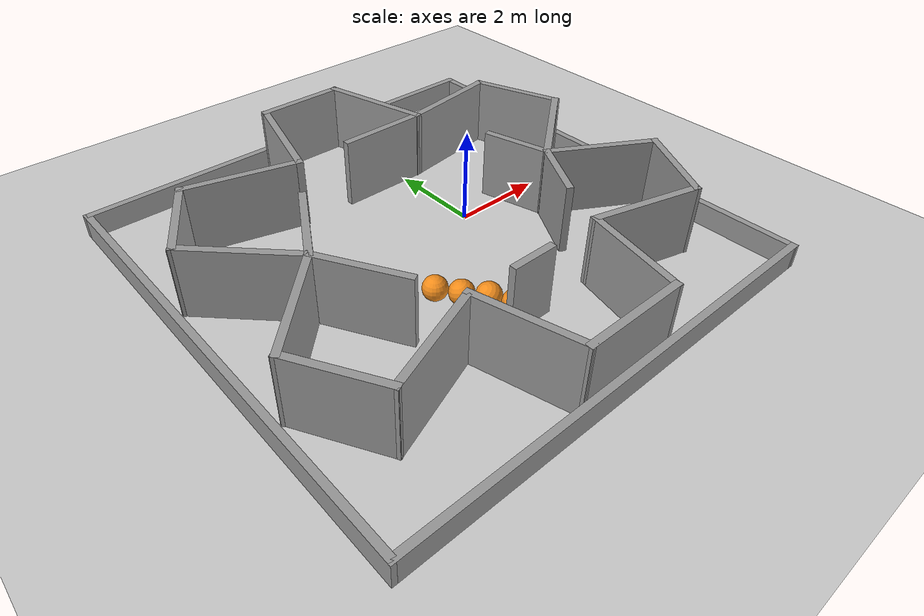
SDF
<sdf version="1.7">
 <world name="default">
  <light name="sun" type="directional">
   <pose>0 0 10 0 -0 0</pose>
   <diffuse>0.8 0.8 0.8 1</diffuse>
   <specular>0.2 0.2 0.2 1</specular>
   <attenuation>
    <range>1000</range>
    <constant>0.9</constant>
    <linear>0.01</linear>
    <quadratic>0.001</quadratic>
   </attenuation>
   <direction>-0.5 0.1 -0.9</direction>
   <spot><inner_angle>0</inner_angle><outer_angle>0</outer_angle><falloff>0</falloff></spot>
  </light>
  <model name="ground_plane">
   <static>1</static>
   <link name="link">
    <collision name="collision">
     <geometry><plane><normal>0 0 1</normal><size>100 100</size></plane></geometry>
     <surface><friction><ode><mu>100</mu><mu2>50</mu2></ode></friction></surface>
    </collision>
    <visual name="visual">
     <cast_shadows>0</cast_shadows>
     <geometry><plane><normal>0 0 1</normal><size>100 100</size></plane></geometry>
     <material>
      <script><uri>file://media/materials/scripts/gazebo.material</uri><name>Gazebo/Grey</name></script>
     </material>
    </visual>
   </link>
  </model>
  <gravity>0 0 -9.8</gravity>
  <magnetic_field>6e-06 2.3e-05 -4.2e-05</magnetic_field>
  <atmosphere type="adiabatic"/>
  <physics type="ode">
   <max_step_size>0.001</max_step_size>
   <real_time_factor>1</real_time_factor>
   <real_time_update_rate>1000</real_time_update_rate>
  </physics>
  <scene><ambient>0.4 0.4 0.4 1</ambient><background>0.7 0.7 0.7 1</background><shadows>1</shadows></scene>
  <audio><device>default</device></audio>
  <spherical_coordinates>
   <surface_model>EARTH_WGS84</surface_model>
   <latitude_deg>0</latitude_deg>
   <longitude_deg>0</longitude_deg>
   <elevation>0</elevation>
   <heading_deg>0</heading_deg>
  </spherical_coordinates>
  <model name="room2">
   <pose>-1.30767 -0.42033 0 0 -0 0</pose>
   <link name="Wall_12">
    <collision name="Wall_12_Collision">
     <geometry><box><size>2.45261 0.15 1.5</size></box></geometry>
     <pose>0 0 0.75 0 -0 0</pose>
    </collision>
    <visual name="Wall_12_Visual">
     <pose>0 0 0.75 0 -0 0</pose>
     <geometry><box><size>2.45261 0.15 1.5</size></box></geometry>
     <material>
      <script><uri>file://media/materials/scripts/gazebo.material</uri><name>Gazebo/Grey</name></script>
      <ambient>1 1 1 1</ambient>
     </material>
     <meta><layer>0</layer></meta>
    </visual>
    <pose>2.681 -2.989 0 0 -0 -0.262253</pose>
   </link>
   <link name="Wall_32">
    <collision name="Wall_32_Collision">
     <geometry><box><size>2.5 0.15 1.5</size></box></geometry>
     <pose>0 0 0.75 0 -0 0</pose>
    </collision>
    <visual name="Wall_32_Visual">
     <pose>0 0 0.75 0 -0 0</pose>
     <geometry><box><size>2.5 0.15 1.5</size></box></geometry>
     <material>
      <script><uri>file://media/materials/scripts/gazebo.material</uri><name>Gazebo/Grey</name></script>
      <ambient>1 1 1 1</ambient>
     </material>
     <meta><layer>0</layer></meta>
    </visual>
    <pose>1.3955 3.59 0 0 -0 1.83302</pose>
   </link>
   <link name="Wall_33">
    <collision name="Wall_33_Collision">
     <geometry><box><size>2 0.15 1.5</size></box></geometry>
     <pose>0 0 0.75 0 -0 0</pose>
    </collision>
    <visual name="Wall_33_Visual">
     <pose>0 0 0.75 0 -0 0</pose>
     <geometry><box><size>2 0.15 1.5</size></box></geometry>
     <material>
      <script><uri>file://media/materials/scripts/gazebo.material</uri><name>Gazebo/Grey</name></script>
      <ambient>1 1 1 1</ambient>
     </material>
     <meta><layer>0</layer></meta>
    </visual>
    <pose>0.166 4.7245 0 0 -0 3.14159</pose>
   </link>
   <link name="Wall_34">
    <collision name="Wall_34_Collision">
     <geometry><box><size>2.5 0.15 1.5</size></box></geometry>
     <pose>0 0 0.75 0 -0 0</pose>
    </collision>
    <visual name="Wall_34_Visual">
     <pose>0 0 0.75 0 -0 0</pose>
     <geometry><box><size>2.5 0.15 1.5</size></box></geometry>
     <material>
      <script><uri>file://media/materials/scripts/gazebo.material</uri><name>Gazebo/Grey</name></script>
      <ambient>1 1 1 1</ambient>
     </material>
     <meta><layer>0</layer></meta>
    </visual>
    <pose>-1.063 3.59 0 0 -0 -1.83261</pose>
   </link>
   <link name="Wall_35">
    <collision name="Wall_35_Collision">
     <geometry><box><size>2.5 0.15 1.5</size></box></geometry>
     <pose>0 0 0.75 0 -0 0</pose>
    </collision>
    <visual name="Wall_35_Visual">
     <pose>0 0 0.75 0 -0 0</pose>
     <geometry><box><size>2.5 0.15 1.5</size></box></geometry>
     <material>
      <script><uri>file://media/materials/scripts/gazebo.material</uri><name>Gazebo/Grey</name></script>
      <ambient>1 1 1 1</ambient>
     </material>
     <meta><layer>0</layer></meta>
    </visual>
    <pose>-2.502 2.7595 0 0 -0 2.87989</pose>
   </link>
   <link name="Wall_36">
    <collision name="Wall_36_Collision">
     <geometry><box><size>2 0.15 1.5</size></box></geometry>
     <pose>0 0 0.75 0 -0 0</pose>
    </collision>
    <visual name="Wall_36_Visual">
     <pose>0 0 0.75 0 -0 0</pose>
     <geometry><box><size>2 0.15 1.5</size></box></geometry>
     <material>
      <script><uri>file://media/materials/scripts/gazebo.material</uri><name>Gazebo/Grey</name></script>
      <ambient>1 1 1 1</ambient>
     </material>
     <meta><layer>0</layer></meta>
    </visual>
    <pose>-4.0995 2.2625 0 0 -0 -2.09443</pose>
   </link>
   <link name="Wall_37">
    <collision name="Wall_37_Collision">
     <geometry><box><size>2.50042 0.15 1.5</size></box></geometry>
     <pose>0 0 0.75 0 -0 0</pose>
    </collision>
    <visual name="Wall_37_Visual">
     <pose>0 0 0.75 0 -0 0</pose>
     <geometry><box><size>2.50042 0.15 1.5</size></box></geometry>
     <material>
      <script><uri>file://media/materials/scripts/gazebo.material</uri><name>Gazebo/Grey</name></script>
      <ambient>1 1 1 1</ambient>
     </material>
     <meta><layer>0</layer></meta>
    </visual>
    <pose>-3.731 0.6305 0 0 -0 -0.785398</pose>
   </link>
   <link name="Wall_38">
    <collision name="Wall_38_Collision">
     <geometry><box><size>2.50042 0.15 1.5</size></box></geometry>
     <pose>0 0 0.75 0 -0 0</pose>
    </collision>
    <visual name="Wall_38_Visual">
     <pose>0 0 0.75 0 -0 0</pose>
     <geometry><box><size>2.50042 0.15 1.5</size></box></geometry>
     <material>
      <script><uri>file://media/materials/scripts/gazebo.material</uri><name>Gazebo/Grey</name></script>
      <ambient>1 1 1 1</ambient>
     </material>
     <meta><layer>0</layer></meta>
    </visual>
    <pose>-3.731 -1.0315 0 0 -0 -2.35619</pose>
   </link>
   <link name="Wall_39">
    <collision name="Wall_39_Collision">
     <geometry><box><size>2.00001 0.15 1.5</size></box></geometry>
     <pose>0 0 0.75 0 -0 0</pose>
    </collision>
    <visual name="Wall_39_Visual">
     <pose>0 0 0.75 0 -0 0</pose>
     <geometry><box><size>2.00001 0.15 1.5</size></box></geometry>
     <material>
      <script><uri>file://media/materials/scripts/gazebo.material</uri><name>Gazebo/Grey</name></script>
      <ambient>1 1 1 1</ambient>
     </material>
     <meta><layer>0</layer></meta>
    </visual>
    <pose>-4.0995 -2.6635 0 0 -0 -1.04716</pose>
   </link>
   <link name="Wall_40">
    <collision name="Wall_40_Collision">
     <geometry><box><size>2.38551 0.15 1.5</size></box></geometry>
     <pose>0 0 0.75 0 -0 0</pose>
    </collision>
    <visual name="Wall_40_Visual">
     <pose>0 0 0.75 0 -0 0</pose>
     <geometry><box><size>2.38551 0.15 1.5</size></box></geometry>
     <material>
      <script><uri>file://media/materials/scripts/gazebo.material</uri><name>Gazebo/Grey</name></script>
      <ambient>1 1 1 1</ambient>
     </material>
     <meta><layer>0</layer></meta>
    </visual>
    <pose>-2.5905 -3.072 0 0 -0 0.358823</pose>
   </link>
   <link name="Wall_42">
    <collision name="Wall_42_Collision">
     <geometry><box><size>2 0.15 1.5</size></box></geometry>
     <pose>0 0 0.75 0 -0 0</pose>
    </collision>
    <visual name="Wall_42_Visual">
     <pose>0 0 0.75 0 -0 0</pose>
     <geometry><box><size>2 0.15 1.5</size></box></geometry>
     <material>
      <script><uri>file://media/materials/scripts/gazebo.material</uri><name>Gazebo/Grey</name></script>
      <ambient>1 1 1 1</ambient>
     </material>
     <meta><layer>0</layer></meta>
    </visual>
    <pose>4.2555 -2.4865 0 0 -0 1.04716</pose>
   </link>
   <link name="Wall_43">
    <collision name="Wall_43_Collision">
     <geometry><box><size>2.5 0.15 1.5</size></box></geometry>
     <pose>0 0 0.75 0 -0 0</pose>
    </collision>
    <visual name="Wall_43_Visual">
     <pose>0 0 0.75 0 -0 0</pose>
     <geometry><box><size>2.5 0.15 1.5</size></box></geometry>
     <material>
      <script><uri>file://media/materials/scripts/gazebo.material</uri><name>Gazebo/Grey</name></script>
      <ambient>1 1 1 1</ambient>
     </material>
     <meta><layer>0</layer></meta>
    </visual>
    <pose>3.7005 -1.098 0 0 -0 2.61796</pose>
   </link>
   <link name="Wall_44">
    <collision name="Wall_44_Collision">
     <geometry><box><size>2.55641 0.15 1.5</size></box></geometry>
     <pose>0 0 0.75 0 -0 0</pose>
    </collision>
    <visual name="Wall_44_Visual">
     <pose>0 0 0.75 0 -0 0</pose>
     <geometry><box><size>2.55641 0.15 1.5</size></box></geometry>
     <material>
      <script><uri>file://media/materials/scripts/gazebo.material</uri><name>Gazebo/Grey</name></script>
      <ambient>1 1 1 1</ambient>
     </material>
     <meta><layer>0</layer></meta>
    </visual>
    <pose>3.63206 0.229088 0 0 -0 0.661981</pose>
   </link>
   <link name="Wall_47">
    <collision name="Wall_47_Collision">
     <geometry><box><size>2.38393 0.15 1.5</size></box></geometry>
     <pose>0 0 0.75 0 -0 0</pose>
    </collision>
    <visual name="Wall_47_Visual">
     <pose>0 0 0.75 0 -0 0</pose>
     <geometry><box><size>2.38393 0.15 1.5</size></box></geometry>
     <material>
      <script><uri>file://media/materials/scripts/gazebo.material</uri><name>Gazebo/Grey</name></script>
      <ambient>1 1 1 1</ambient>
     </material>
     <meta><layer>0</layer></meta>
    </visual>
    <pose>2.80656 2.60759 0 0 -0 0.136586</pose>
   </link>
   <link name="Wall_49">
    <collision name="Wall_49_Collision">
     <geometry><box><size>2.06152 0.15 1.5</size></box></geometry>
     <pose>0 0 0.75 0 -0 0</pose>
    </collision>
    <visual name="Wall_49_Visual">
     <pose>0 0 0.75 0 -0 0</pose>
     <geometry><box><size>2.06152 0.15 1.5</size></box></geometry>
     <material>
      <script><uri>file://media/materials/scripts/gazebo.material</uri><name>Gazebo/Grey</name></script>
      <ambient>1 1 1 1</ambient>
     </material>
     <meta><layer>0</layer></meta>
    </visual>
    <pose>4.24712 1.84897 0 0 -0 -1.2138</pose>
   </link>
   <link name="Wall_51">
    <collision name="Wall_51_Collision">
     <geometry><box><size>2 0.15 1.5</size></box></geometry>
     <pose>0 0 0.75 0 -0 0</pose>
    </collision>
    <visual name="Wall_51_Visual">
     <pose>0 0 0.75 0 -0 0</pose>
     <geometry><box><size>2 0.15 1.5</size></box></geometry>
     <material>
      <script><uri>file://media/materials/scripts/gazebo.material</uri><name>Gazebo/Grey</name></script>
      <ambient>1 1 1 1</ambient>
     </material>
     <meta><layer>0</layer></meta>
    </visual>
    <pose>-2.4375 0.6005 0 0 -0 1.04716</pose>
   </link>
   <link name="Wall_54">
    <collision name="Wall_54_Collision">
     <geometry><box><size>2 0.15 1.5</size></box></geometry>
     <pose>0 0 0.75 0 -0 0</pose>
    </collision>
    <visual name="Wall_54_Visual">
     <pose>0 0 0.75 0 -0 0</pose>
     <geometry><box><size>2 0.15 1.5</size></box></geometry>
     <material>
      <script><uri>file://media/materials/scripts/gazebo.material</uri><name>Gazebo/Grey</name></script>
      <ambient>1 1 1 1</ambient>
     </material>
     <meta><layer>0</layer></meta>
    </visual>
    <pose>0.775 2.4555 0 0 -0 3.14159</pose>
   </link>
   <link name="Wall_56">
    <collision name="Wall_56_Collision">
     <geometry><box><size>2 0.15 1.5</size></box></geometry>
     <pose>0 0 0.75 0 -0 0</pose>
    </collision>
    <visual name="Wall_56_Visual">
     <pose>0 0 0.75 0 -0 0</pose>
     <geometry><box><size>2 0.15 1.5</size></box></geometry>
     <material>
      <script><uri>file://media/materials/scripts/gazebo.material</uri><name>Gazebo/Grey</name></script>
      <ambient>1 1 1 1</ambient>
     </material>
     <meta><layer>0</layer></meta>
    </visual>
    <pose>-2.4375 -1.0015 0 0 -0 -1.04716</pose>
   </link>
   <link name="Wall_58">
    <collision name="Wall_58_Collision">
     <geometry><box><size>1.5 0.15 1.5</size></box></geometry>
     <pose>0 0 0.75 0 -0 0</pose>
    </collision>
    <visual name="Wall_58_Visual">
     <pose>0 0 0.75 0 -0 0</pose>
     <geometry><box><size>1.5 0.15 1.5</size></box></geometry>
     <material>
      <script><uri>file://media/materials/scripts/gazebo.material</uri><name>Gazebo/Grey</name></script>
      <ambient>1 1 1 1</ambient>
     </material>
     <meta><layer>0</layer></meta>
    </visual>
    <pose>2.5085 0.1415 0 0 -0 1.83231</pose>
   </link>
   <link name="Wall_60">
    <collision name="Wall_60_Collision">
     <geometry><box><size>1 0.15 1.5</size></box></geometry>
     <pose>0 0 0.75 0 -0 0</pose>
    </collision>
    <visual name="Wall_60_Visual">
     <pose>0 0 0.75 0 -0 0</pose>
     <geometry><box><size>1 0.15 1.5</size></box></geometry>
     <material>
      <script><uri>file://media/materials/scripts/gazebo.material</uri><name>Gazebo/Grey</name></script>
      <ambient>1 1 1 1</ambient>
     </material>
     <meta><layer>0</layer></meta>
    </visual>
    <pose>-0.084 -2.7105 0 0 -0 0</pose>
   </link>
   <link name="Wall_62">
    <collision name="Wall_62_Collision">
     <geometry><box><size>1.5 0.15 1.5</size></box></geometry>
     <pose>0 0 0.75 0 -0 0</pose>
    </collision>
    <visual name="Wall_62_Visual">
     <pose>0 0 0.75 0 -0 0</pose>
     <geometry><box><size>1.5 0.15 1.5</size></box></geometry>
     <material>
      <script><uri>file://media/materials/scripts/gazebo.material</uri><name>Gazebo/Grey</name></script>
      <ambient>1 1 1 1</ambient>
     </material>
     <meta><layer>0</layer></meta>
    </visual>
    <pose>2.3455 -1.095 0 0 -0 -2.09444</pose>
   </link>
   <link name="Wall_67">
    <collision name="Wall_67_Collision">
     <geometry><box><size>10 0.15 0.5</size></box></geometry>
     <pose>0 0 0.25 0 -0 0</pose>
    </collision>
    <visual name="Wall_67_Visual">
     <pose>0 0 0.25 0 -0 0</pose>
     <geometry><box><size>10 0.15 0.5</size></box></geometry>
     <material>
      <script><uri>file://media/materials/scripts/gazebo.material</uri><name>Gazebo/Grey</name></script>
      <ambient>1 1 1 1</ambient>
     </material>
     <meta><layer>0</layer></meta>
    </visual>
    <pose>0 4.925 0 0 -0 -0.000102</pose>
   </link>
   <link name="Wall_83">
    <collision name="Wall_83_Collision">
     <geometry><box><size>2.25 0.15 1.5</size></box></geometry>
     <pose>0 0 0.75 0 -0 0</pose>
    </collision>
    <visual name="Wall_83_Visual">
     <pose>0 0 0.75 0 -0 0</pose>
     <geometry><box><size>2.25 0.15 1.5</size></box></geometry>
     <material>
      <script><uri>file://media/materials/scripts/gazebo.material</uri><name>Gazebo/Grey</name></script>
      <ambient>1 1 1 1</ambient>
     </material>
     <meta><layer>0</layer></meta>
    </visual>
    <pose>-1.272 -3.6935 0 0 -0 -1.30872</pose>
   </link>
   <link name="Wall_85">
    <collision name="Wall_85_Collision">
     <geometry><box><size>2.25 0.15 1.5</size></box></geometry>
     <pose>0 0 0.75 0 -0 0</pose>
    </collision>
    <visual name="Wall_85_Visual">
     <pose>0 0 0.75 0 -0 0</pose>
     <geometry><box><size>2.25 0.15 1.5</size></box></geometry>
     <material>
      <script><uri>file://media/materials/scripts/gazebo.material</uri><name>Gazebo/Grey</name></script>
      <ambient>1 1 1 1</ambient>
     </material>
     <meta><layer>0</layer></meta>
    </visual>
    <pose>0.05 -4.7075 0 0 -0 0</pose>
   </link>
   <link name="Wall_87">
    <collision name="Wall_87_Collision">
     <geometry><box><size>2.22086 0.15 1.5</size></box></geometry>
     <pose>0 0 0.75 0 -0 0</pose>
    </collision>
    <visual name="Wall_87_Visual">
     <pose>0 0 0.75 0 -0 0</pose>
     <geometry><box><size>2.22086 0.15 1.5</size></box></geometry>
     <material>
      <script><uri>file://media/materials/scripts/gazebo.material</uri><name>Gazebo/Grey</name></script>
      <ambient>1 1 1 1</ambient>
     </material>
     <meta><layer>0</layer></meta>
    </visual>
    <pose>1.3345 -3.699 0 0 -0 -1.79926</pose>
   </link>
   <link name="Wall_92">
    <collision name="Wall_92_Collision">
     <geometry><box><size>10 0.15 0.5</size></box></geometry>
     <pose>0 0 0.25 0 -0 0</pose>
    </collision>
    <visual name="Wall_92_Visual">
     <pose>0 0 0.25 0 -0 0</pose>
     <geometry><box><size>10 0.15 0.5</size></box></geometry>
     <material>
      <script><uri>file://media/materials/scripts/gazebo.material</uri><name>Gazebo/Grey</name></script>
      <ambient>1 1 1 1</ambient>
     </material>
     <meta><layer>0</layer></meta>
    </visual>
    <pose>-4.925 0.0005 0 0 -0 -1.5708</pose>
   </link>
   <link name="Wall_94">
    <collision name="Wall_94_Collision">
     <geometry><box><size>10 0.15 0.5</size></box></geometry>
     <pose>0 0 0.25 0 -0 0</pose>
    </collision>
    <visual name="Wall_94_Visual">
     <pose>0 0 0.25 0 -0 0</pose>
     <geometry><box><size>10 0.15 0.5</size></box></geometry>
     <material>
      <script><uri>file://media/materials/scripts/gazebo.material</uri><name>Gazebo/Grey</name></script>
      <ambient>1 1 1 1</ambient>
     </material>
     <meta><layer>0</layer></meta>
    </visual>
    <pose>0 -4.925 0 0 -0 -0.000102</pose>
   </link>
   <link name="Wall_95">
    <collision name="Wall_95_Collision">
     <geometry><box><size>10 0.15 0.5</size></box></geometry>
     <pose>0 0 0.25 0 -0 0</pose>
    </collision>
    <visual name="Wall_95_Visual">
     <pose>0 0 0.25 0 -0 0</pose>
     <geometry><box><size>10 0.15 0.5</size></box></geometry>
     <material>
      <script><uri>file://media/materials/scripts/gazebo.material</uri><name>Gazebo/Grey</name></script>
      <ambient>1 1 1 1</ambient>
     </material>
     <meta><layer>0</layer></meta>
    </visual>
    <pose>4.925 -0.0005 0 0 -0 1.5708</pose>
   </link>
   <static>1</static>
  </model>
  <model name="cricket_ball">
   <link name="link">
    <pose>0 0 0.0375 0 -0 0</pose>
    <inertial>
     <mass>0.1467</mass>
     <inertia>
      <ixx>8.25187e-05</ixx>
      <ixy>0</ixy>
      <ixz>0</ixz>
      <iyy>8.25187e-05</iyy>
      <iyz>0</iyz>
      <izz>8.25187e-05</izz>
     </inertia>
    </inertial>
    <collision name="collision">
     <geometry><sphere><radius>0.25</radius></sphere></geometry>
     <surface>
      <contact>
       <poissons_ratio>0.347</poissons_ratio>
       <elastic_modulus>8.8e+09</elastic_modulus>
       <ode><kp>100000</kp><kd>100</kd><max_vel>100</max_vel><min_depth>0.001</min_depth></ode>
      </contact>
      <friction>
       <torsional>
        <coefficient>1</coefficient>
        <use_patch_radius>0</use_patch_radius>
        <surface_radius>0.01</surface_radius>
       </torsional>
      </friction>
     </surface>
    </collision>
    <visual name="visual">
     <geometry><sphere><radius>0.25</radius></sphere></geometry>
     <material>
      <script><uri>file://media/materials/scripts/gazebo.material</uri><name>Gazebo/Orange</name></script>
     </material>
    </visual>
    <velocity_decay><linear>0.9</linear><angular>0.005</angular></velocity_decay>
   </link>
   <pose>-1.40311 -2.78197 0.245981 0.064408 1.49041 -0.66187</pose>
  </model>
  <model name="cricket_ball_0">
   <link name="link">
    <pose>0 0 0.0375 0 -0 0</pose>
    <inertial>
     <mass>0.1467</mass>
     <inertia>
      <ixx>8.25187e-05</ixx>
      <ixy>0</ixy>
      <ixz>0</ixz>
      <iyy>8.25187e-05</iyy>
      <iyz>0</iyz>
      <izz>8.25187e-05</izz>
     </inertia>
    </inertial>
    <collision name="collision">
     <geometry><sphere><radius>0.25</radius></sphere></geometry>
     <surface>
      <contact>
       <poissons_ratio>0.347</poissons_ratio>
       <elastic_modulus>8.8e+09</elastic_modulus>
       <ode><kp>100000</kp><kd>100</kd><max_vel>100</max_vel><min_depth>0.001</min_depth></ode>
      </contact>
      <friction>
       <torsional>
        <coefficient>1</coefficient>
        <use_patch_radius>0</use_patch_radius>
        <surface_radius>0.01</surface_radius>
       </torsional>
      </friction>
     </surface>
    </collision>
    <visual name="visual">
     <geometry><sphere><radius>0.25</radius></sphere></geometry>
     <material>
      <script><uri>file://media/materials/scripts/gazebo.material</uri><name>Gazebo/Orange</name></script>
     </material>
    </visual>
    <velocity_decay><linear>0.9</linear><angular>0.005</angular></velocity_decay>
   </link>
   <pose>-1.61381 -2.35286 0.279757 -2.56686 0.211828 -1.98571</pose>
  </model>
  <model name="cricket_ball_1">
   <link name="link">
    <pose>0 0 0.0375 0 -0 0</pose>
    <inertial>
     <mass>0.1467</mass>
     <inertia>
      <ixx>8.25187e-05</ixx>
      <ixy>0</ixy>
      <ixz>0</ixz>
      <iyy>8.25187e-05</iyy>
      <iyz>0</iyz>
      <izz>8.25187e-05</izz>
     </inertia>
    </inertial>
    <collision name="collision">
     <geometry><sphere><radius>0.25</radius></sphere></geometry>
     <surface>
      <contact>
       <poissons_ratio>0.347</poissons_ratio>
       <elastic_modulus>8.8e+09</elastic_modulus>
       <ode><kp>100000</kp><kd>100</kd><max_vel>100</max_vel><min_depth>0.001</min_depth></ode>
      </contact>
      <friction>
       <torsional>
        <coefficient>1</coefficient>
        <use_patch_radius>0</use_patch_radius>
        <surface_radius>0.01</surface_radius>
       </torsional>
      </friction>
     </surface>
    </collision>
    <visual name="visual">
     <geometry><sphere><radius>0.25</radius></sphere></geometry>
     <material>
      <script><uri>file://media/materials/scripts/gazebo.material</uri><name>Gazebo/Orange</name></script>
     </material>
    </visual>
    <velocity_decay><linear>0.9</linear><angular>0.005</angular></velocity_decay>
   </link>
   <pose>-1.93599 -1.97506 0.284533 -2.95432 -0.266163 -1.28347</pose>
  </model>
  <model name="cricket_ball_2">
   <link name="link">
    <pose>0 0 0.0375 0 -0 0</pose>
    <inertial>
     <mass>0.1467</mass>
     <inertia>
      <ixx>8.25187e-05</ixx>
      <ixy>0</ixy>
      <ixz>0</ixz>
      <iyy>8.25187e-05</iyy>
      <iyz>0</iyz>
      <izz>8.25187e-05</izz>
     </inertia>
    </inertial>
    <collision name="collision">
     <geometry><sphere><radius>0.25</radius></sphere></geometry>
     <surface>
      <contact>
       <poissons_ratio>0.347</poissons_ratio>
       <elastic_modulus>8.8e+09</elastic_modulus>
       <ode><kp>100000</kp><kd>100</kd><max_vel>100</max_vel><min_depth>0.001</min_depth></ode>
      </contact>
      <friction>
       <torsional>
        <coefficient>1</coefficient>
        <use_patch_radius>0</use_patch_radius>
        <surface_radius>0.01</surface_radius>
       </torsional>
      </friction>
     </surface>
    </collision>
    <visual name="visual">
     <geometry><sphere><radius>0.25</radius></sphere></geometry>
     <material>
      <script><uri>file://media/materials/scripts/gazebo.material</uri><name>Gazebo/Orange</name></script>
     </material>
    </visual>
    <velocity_decay><linear>0.9</linear><angular>0.005</angular></velocity_decay>
   </link>
   <pose>-2.2137 -1.57493 0.211502 -0.023607 -0.017499 0.000108</pose>
  </model>
  <model name="cricket_ball_3">
   <link name="link">
    <pose>0 0 0.0375 0 -0 0</pose>
    <inertial>
     <mass>0.1467</mass>
     <inertia>
      <ixx>8.25187e-05</ixx>
      <ixy>0</ixy>
      <ixz>0</ixz>
      <iyy>8.25187e-05</iyy>
      <iyz>0</iyz>
      <izz>8.25187e-05</izz>
     </inertia>
    </inertial>
    <collision name="collision">
     <geometry><sphere><radius>0.25</radius></sphere></geometry>
     <surface>
      <contact>
       <poissons_ratio>0.347</poissons_ratio>
       <elastic_modulus>8.8e+09</elastic_modulus>
       <ode><kp>100000</kp><kd>100</kd><max_vel>100</max_vel><min_depth>0.001</min_depth></ode>
      </contact>
      <friction>
       <torsional>
        <coefficient>1</coefficient>
        <use_patch_radius>0</use_patch_radius>
        <surface_radius>0.01</surface_radius>
       </torsional>
      </friction>
     </surface>
    </collision>
    <visual name="visual">
     <geometry><sphere><radius>0.25</radius></sphere></geometry>
     <material>
      <script><uri>file://media/materials/scripts/gazebo.material</uri><name>Gazebo/Orange</name></script>
     </material>
    </visual>
    <velocity_decay><linear>0.9</linear><angular>0.005</angular></velocity_decay>
   </link>
   <pose>-2.61801 -1.12864 0.211486 0 -0 0</pose>
  </model>
  <model name="cricket_ball_4">
   <link name="link">
    <pose>0 0 0.0375 0 -0 0</pose>
    <inertial>
     <mass>0.1467</mass>
     <inertia>
      <ixx>8.25187e-05</ixx>
      <ixy>0</ixy>
      <ixz>0</ixz>
      <iyy>8.25187e-05</iyy>
      <iyz>0</iyz>
      <izz>8.25187e-05</izz>
     </inertia>
    </inertial>
    <collision name="collision">
     <geometry><sphere><radius>0.25</radius></sphere></geometry>
     <surface>
      <contact>
       <poissons_ratio>0.347</poissons_ratio>
       <elastic_modulus>8.8e+09</elastic_modulus>
       <ode><kp>100000</kp><kd>100</kd><max_vel>100</max_vel><min_depth>0.001</min_depth></ode>
      </contact>
      <friction>
       <torsional>
        <coefficient>1</coefficient>
        <use_patch_radius>0</use_patch_radius>
        <surface_radius>0.01</surface_radius>
       </torsional>
      </friction>
     </surface>
    </collision>
    <visual name="visual">
     <geometry><sphere><radius>0.25</radius></sphere></geometry>
     <material>
      <script><uri>file://media/materials/scripts/gazebo.material</uri><name>Gazebo/Orange</name></script>
     </material>
    </visual>
    <velocity_decay><linear>0.9</linear><angular>0.005</angular></velocity_decay>
   </link>
   <pose>-3.13422 -0.637915 0.211486 0 -0 0</pose>
  </model>
  <model name="cricket_ball_5">
   <link name="link">
    <pose>0 0 0.0375 0 -0 0</pose>
    <inertial>
     <mass>0.1467</mass>
     <inertia>
      <ixx>8.25187e-05</ixx>
      <ixy>0</ixy>
      <ixz>0</ixz>
      <iyy>8.25187e-05</iyy>
      <iyz>0</iyz>
      <izz>8.25187e-05</izz>
     </inertia>
    </inertial>
    <collision name="collision">
     <geometry><sphere><radius>0.25</radius></sphere></geometry>
     <surface>
      <contact>
       <poissons_ratio>0.347</poissons_ratio>
       <elastic_modulus>8.8e+09</elastic_modulus>
       <ode><kp>100000</kp><kd>100</kd><max_vel>100</max_vel><min_depth>0.001</min_depth></ode>
      </contact>
      <friction>
       <torsional>
        <coefficient>1</coefficient>
        <use_patch_radius>0</use_patch_radius>
        <surface_radius>0.01</surface_radius>
       </torsional>
      </friction>
     </surface>
    </collision>
    <visual name="visual">
     <geometry><sphere><radius>0.25</radius></sphere></geometry>
     <material>
      <script><uri>file://media/materials/scripts/gazebo.material</uri><name>Gazebo/Orange</name></script>
     </material>
    </visual>
    <velocity_decay><linear>0.9</linear><angular>0.005</angular></velocity_decay>
   </link>
   <pose>-3.49794 -0.084016 0.215872 -0.259743 -0.418528 0.05546</pose>
  </model>
 </world>
</sdf>
